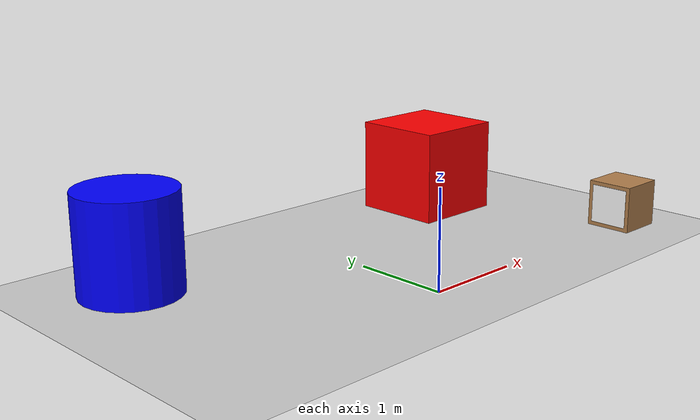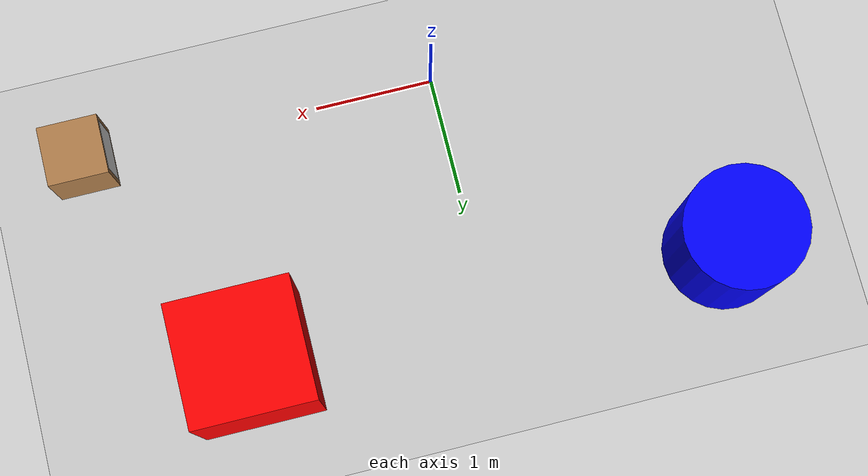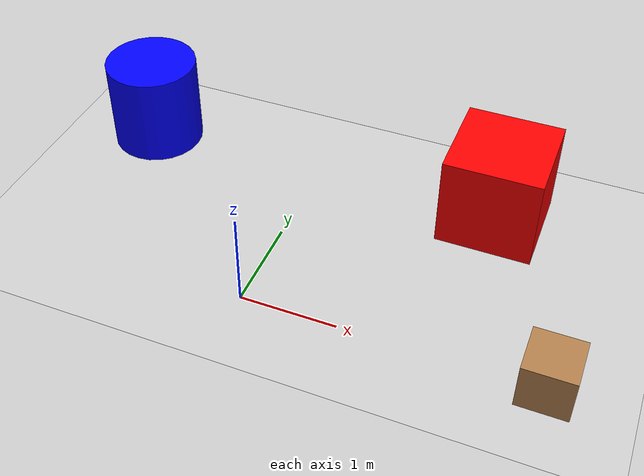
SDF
<?xml version="1.0" ?>
<sdf version="1.8">
  <world name="sample_world">
    <physics name="1ms" type="ignored">
      <max_step_size>0.001</max_step_size>
      <real_time_factor>1.0</real_time_factor>
    </physics>
    <plugin
      filename="gz-sim-physics-system"
      name="gz::sim::systems::Physics">
    </plugin>
    <plugin
      filename="gz-sim-user-commands-system"
      name="gz::sim::systems::UserCommands">
    </plugin>
    <plugin
      filename="gz-sim-scene-broadcaster-system"
      name="gz::sim::systems::SceneBroadcaster">
    </plugin>
    <plugin
      filename="gz-sim-sensors-system"
      name="gz::sim::systems::Sensors">
      <render_engine>ogre2</render_engine>
    </plugin>

    <light type="directional" name="sun">
      <cast_shadows>false</cast_shadows>
      <pose>0 0 10 0 0 0</pose>
      <diffuse>0.8 0.8 0.8 1</diffuse>
      <specular>0.2 0.2 0.2 1</specular>
      <attenuation>
        <range>1000</range>
        <constant>0.9</constant>
        <linear>0.01</linear>
        <quadratic>0.001</quadratic>
      </attenuation>
      <direction>-0.5 0.1 -0.9</direction>
    </light>

    <light type="directional" name="sun2">
      <cast_shadows>false</cast_shadows>
      <pose>0 0 10 0 0 0</pose>
      <diffuse>0.8 0.8 0.8 1</diffuse>
      <specular>0.2 0.2 0.2 1</specular>
      <attenuation>
        <range>1000</range>
        <constant>0.9</constant>
        <linear>0.01</linear>
        <quadratic>0.001</quadratic>
      </attenuation>
      <direction>0.5 -0.1 -0.9</direction>
    </light>

    <model name="ground_plane">
      <static>true</static>
      <link name="link">
        <collision name="collision">
          <geometry>
            <plane>
              <normal>0 0 1</normal>
              <size>100 100</size>
            </plane>
          </geometry>
        </collision>
        <visual name="visual">
          <geometry>
            <plane>
              <normal>0 0 1</normal>
              <size>100 100</size>
            </plane>
          </geometry>
          <material>
            <ambient>0.8 0.8 0.8 1</ambient>
            <diffuse>0.8 0.8 0.8 1</diffuse>
            <specular>0.8 0.8 0.8 1</specular>
          </material>
        </visual>
      </link>
    </model>

    <!-- A couple of simple objects -->
    <model name="box1">
      <pose>2 2 0.5 0 0 0</pose>
      <link name="link">
        <collision name="collision">
          <geometry>
            <box>
              <size>1 1 1</size>
            </box>
          </geometry>
        </collision>
        <visual name="visual">
          <geometry>
            <box>
              <size>1 1 1</size>
            </box>
          </geometry>
          <material>
            <ambient>1 0 0 1</ambient>
            <diffuse>1 0 0 1</diffuse>
          </material>
        </visual>
      </link>
    </model>

    <model name="cylinder">
      <pose>-2 2 0.5 0 0 0</pose>
      <link name="link">
        <collision name="collision">
          <geometry>
            <cylinder>
              <radius>0.5</radius>
              <length>1.0</length>
            </cylinder>
          </geometry>
        </collision>
        <visual name="visual">
          <geometry>
            <cylinder>
              <radius>0.5</radius>
              <length>1.0</length>
            </cylinder>
          </geometry>
          <material>
            <ambient>0 0 1 1</ambient>
            <diffuse>0 0 1 1</diffuse>
          </material>
        </visual>
      </link>
    </model>

    <include>
      <uri>model://apriltag_box</uri>
    </include>

  </world>
</sdf>

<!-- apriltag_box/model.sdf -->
<sdf version="1.8">
  <model name="apriltag_box">
    <pose>3 0 0.25 0 0 3.14159</pose>
    <static>true</static>
    <link name="box_link">
      <collision name="collision">
        <geometry>
          <box>
            <size>0.5 0.5 0.5</size>
          </box>
        </geometry>
      </collision>
      <visual name="visual">
        <geometry>
          <box>
            <size>0.5 0.5 0.5</size>
          </box>
        </geometry>
        <material>
          <ambient>0.7 0.5 0.3 1</ambient>
          <diffuse>0.7 0.5 0.3 1</diffuse>
        </material>
      </visual>

      <!-- AprilTag Plane -->
      <visual name="apriltag_visual">
        <pose>0.251 0 0 0 0 0</pose>
        <geometry>
          <box>
            <size>0.001 0.4171875 0.4171875</size>
          </box>
        </geometry>
        <material>
          <ambient>1.0 1.0 1.0 1.0</ambient>
          <diffuse>1.0 1.0 1.0 1.0</diffuse>
          <specular>0.1 0.1 0.1 1.0</specular>
          <pbr>
            <metal>
              <albedo_map>model://apriltag_box/materials/textures/tag25_09_00012_scaled.png</albedo_map>
              <roughness>0.9</roughness>
              <metalness>0.1</metalness>
            </metal>
          </pbr>
        </material>
      </visual>
    </link>
  </model>
</sdf>
